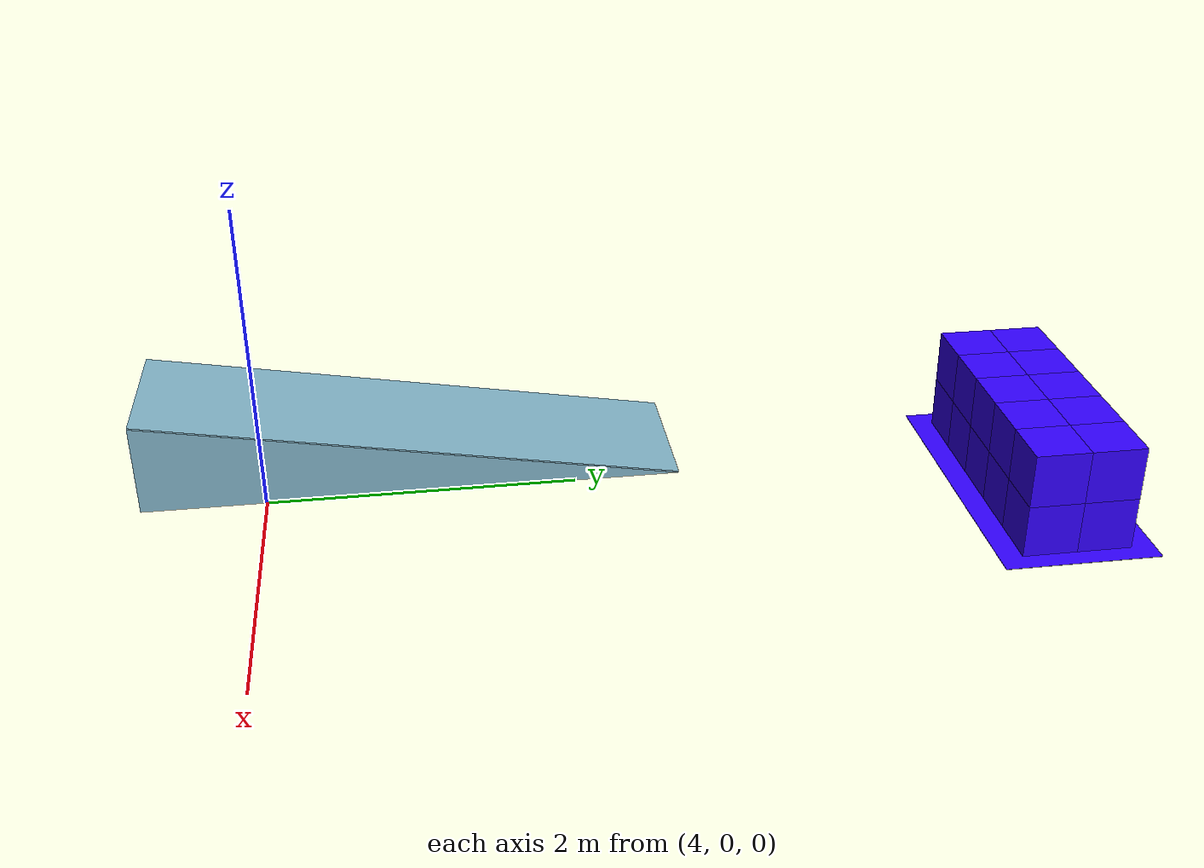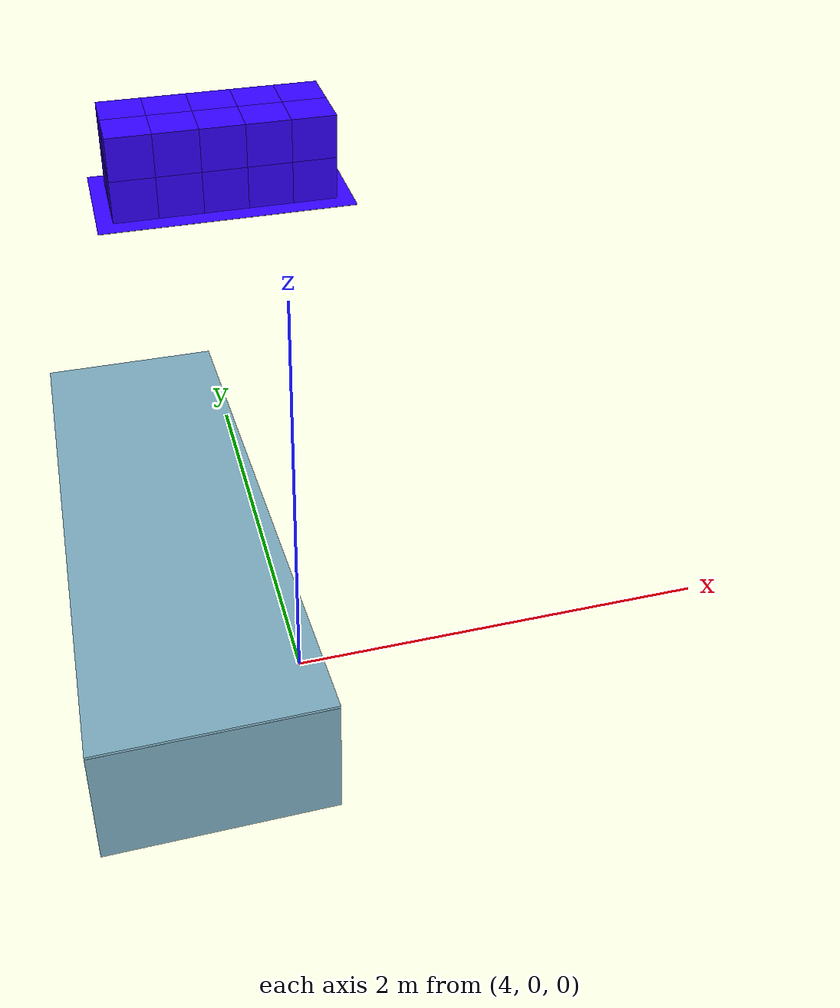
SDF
<sdf version="1.9">
 <world name="robocon_2027">
  <model name="robocon_2027_field">
   <static>true</static>
   <link name="storage_blue">
    <pose>4.450000 4.950000 0.003000 0.000000 0.000000 0.000000</pose>
    <visual name="visual">
     <geometry><box><size>2.000000 1.000000 0.002000</size></box></geometry>
     <cast_shadows>false</cast_shadows>
     <material>
      <ambient>0.196078 0.000000 1.000000 1</ambient>
      <diffuse>0.196078 0.000000 1.000000 1</diffuse>
      <specular>0.08 0.08 0.08 1</specular>
      <double_sided>true</double_sided>
     </material>
    </visual>
   </link>
   <link name="ramp_blue">
    <pose>3.500000 0.950000 0.000000 0.000000 0.000000 0.000000</pose>
    <visual name="visual">
     <geometry><mesh><uri>model://ares_2027sim/meshes/ramp_wedge.obj</uri></mesh></geometry>
     <material>
      <ambient>0.509804 0.705882 0.784314 1</ambient>
      <diffuse>0.509804 0.705882 0.784314 1</diffuse>
      <specular>0.08 0.08 0.08 1</specular>
      <double_sided>true</double_sided>
     </material>
    </visual>
    <collision name="slope_collision">
     <pose>0.000000 0.000000 0.300000 -0.169778 0.000000 0.000000</pose>
     <geometry><box><size>1.000000 3.551056 0.020000</size></box></geometry>
    </collision>
    <visual name="slope_surface_visual">
     <pose>0.000000 0.001000 0.305000 -0.169778 0.000000 0.000000</pose>
     <geometry><box><size>1.000000 3.551056 0.010000</size></box></geometry>
     <material>
      <ambient>0.509804 0.705882 0.784314 1</ambient>
      <diffuse>0.509804 0.705882 0.784314 1</diffuse>
      <specular>0.08 0.08 0.08 1</specular>
      <double_sided>true</double_sided>
     </material>
    </visual>
    <collision name="fill_collision_00">
     <pose>0.000000 -1.700000 0.291429 0.000000 0.000000 0.000000</pose>
     <geometry><box><size>1.000000 0.100000 0.582857</size></box></geometry>
    </collision>
    <collision name="fill_collision_01">
     <pose>0.000000 -1.600000 0.282857 0.000000 0.000000 0.000000</pose>
     <geometry><box><size>1.000000 0.100000 0.565714</size></box></geometry>
    </collision>
    <collision name="fill_collision_02">
     <pose>0.000000 -1.500000 0.274286 0.000000 0.000000 0.000000</pose>
     <geometry><box><size>1.000000 0.100000 0.548571</size></box></geometry>
    </collision>
    <collision name="fill_collision_03">
     <pose>0.000000 -1.400000 0.265714 0.000000 0.000000 0.000000</pose>
     <geometry><box><size>1.000000 0.100000 0.531429</size></box></geometry>
    </collision>
    <collision name="fill_collision_04">
     <pose>0.000000 -1.300000 0.257143 0.000000 0.000000 0.000000</pose>
     <geometry><box><size>1.000000 0.100000 0.514286</size></box></geometry>
    </collision>
    <collision name="fill_collision_05">
     <pose>0.000000 -1.200000 0.248571 0.000000 0.000000 0.000000</pose>
     <geometry><box><size>1.000000 0.100000 0.497143</size></box></geometry>
    </collision>
    <collision name="fill_collision_06">
     <pose>0.000000 -1.100000 0.240000 0.000000 0.000000 0.000000</pose>
     <geometry><box><size>1.000000 0.100000 0.480000</size></box></geometry>
    </collision>
    <collision name="fill_collision_07">
     <pose>0.000000 -1.000000 0.231429 0.000000 0.000000 0.000000</pose>
     <geometry><box><size>1.000000 0.100000 0.462857</size></box></geometry>
    </collision>
    <collision name="fill_collision_08">
     <pose>0.000000 -0.900000 0.222857 0.000000 0.000000 0.000000</pose>
     <geometry><box><size>1.000000 0.100000 0.445714</size></box></geometry>
    </collision>
    <collision name="fill_collision_09">
     <pose>0.000000 -0.800000 0.214286 0.000000 0.000000 0.000000</pose>
     <geometry><box><size>1.000000 0.100000 0.428571</size></box></geometry>
    </collision>
    <collision name="fill_collision_10">
     <pose>0.000000 -0.700000 0.205714 0.000000 0.000000 0.000000</pose>
     <geometry><box><size>1.000000 0.100000 0.411429</size></box></geometry>
    </collision>
    <collision name="fill_collision_11">
     <pose>0.000000 -0.600000 0.197143 0.000000 0.000000 0.000000</pose>
     <geometry><box><size>1.000000 0.100000 0.394286</size></box></geometry>
    </collision>
    <collision name="fill_collision_12">
     <pose>0.000000 -0.500000 0.188571 0.000000 0.000000 0.000000</pose>
     <geometry><box><size>1.000000 0.100000 0.377143</size></box></geometry>
    </collision>
    <collision name="fill_collision_13">
     <pose>0.000000 -0.400000 0.180000 0.000000 0.000000 0.000000</pose>
     <geometry><box><size>1.000000 0.100000 0.360000</size></box></geometry>
    </collision>
    <collision name="fill_collision_14">
     <pose>0.000000 -0.300000 0.171429 0.000000 0.000000 0.000000</pose>
     <geometry><box><size>1.000000 0.100000 0.342857</size></box></geometry>
    </collision>
    <collision name="fill_collision_15">
     <pose>0.000000 -0.200000 0.162857 0.000000 0.000000 0.000000</pose>
     <geometry><box><size>1.000000 0.100000 0.325714</size></box></geometry>
    </collision>
    <collision name="fill_collision_16">
     <pose>0.000000 -0.100000 0.154286 0.000000 0.000000 0.000000</pose>
     <geometry><box><size>1.000000 0.100000 0.308571</size></box></geometry>
    </collision>
    <collision name="fill_collision_17">
     <pose>0.000000 0.000000 0.145714 0.000000 0.000000 0.000000</pose>
     <geometry><box><size>1.000000 0.100000 0.291429</size></box></geometry>
    </collision>
    <collision name="fill_collision_18">
     <pose>0.000000 0.100000 0.137143 0.000000 0.000000 0.000000</pose>
     <geometry><box><size>1.000000 0.100000 0.274286</size></box></geometry>
    </collision>
    <collision name="fill_collision_19">
     <pose>0.000000 0.200000 0.128571 0.000000 0.000000 0.000000</pose>
     <geometry><box><size>1.000000 0.100000 0.257143</size></box></geometry>
    </collision>
    <collision name="fill_collision_20">
     <pose>0.000000 0.300000 0.120000 0.000000 0.000000 0.000000</pose>
     <geometry><box><size>1.000000 0.100000 0.240000</size></box></geometry>
    </collision>
    <collision name="fill_collision_21">
     <pose>0.000000 0.400000 0.111429 0.000000 0.000000 0.000000</pose>
     <geometry><box><size>1.000000 0.100000 0.222857</size></box></geometry>
    </collision>
    <collision name="fill_collision_22">
     <pose>0.000000 0.500000 0.102857 0.000000 0.000000 0.000000</pose>
     <geometry><box><size>1.000000 0.100000 0.205714</size></box></geometry>
    </collision>
    <collision name="fill_collision_23">
     <pose>0.000000 0.600000 0.094286 0.000000 0.000000 0.000000</pose>
     <geometry><box><size>1.000000 0.100000 0.188571</size></box></geometry>
    </collision>
    <collision name="fill_collision_24">
     <pose>0.000000 0.700000 0.085714 0.000000 0.000000 0.000000</pose>
     <geometry><box><size>1.000000 0.100000 0.171429</size></box></geometry>
    </collision>
    <collision name="fill_collision_25">
     <pose>0.000000 0.800000 0.077143 0.000000 0.000000 0.000000</pose>
     <geometry><box><size>1.000000 0.100000 0.154286</size></box></geometry>
    </collision>
    <collision name="fill_collision_26">
     <pose>0.000000 0.900000 0.068571 0.000000 0.000000 0.000000</pose>
     <geometry><box><size>1.000000 0.100000 0.137143</size></box></geometry>
    </collision>
    <collision name="fill_collision_27">
     <pose>0.000000 1.000000 0.060000 0.000000 0.000000 0.000000</pose>
     <geometry><box><size>1.000000 0.100000 0.120000</size></box></geometry>
    </collision>
    <collision name="fill_collision_28">
     <pose>0.000000 1.100000 0.051429 0.000000 0.000000 0.000000</pose>
     <geometry><box><size>1.000000 0.100000 0.102857</size></box></geometry>
    </collision>
    <collision name="fill_collision_29">
     <pose>0.000000 1.200000 0.042857 0.000000 0.000000 0.000000</pose>
     <geometry><box><size>1.000000 0.100000 0.085714</size></box></geometry>
    </collision>
    <collision name="fill_collision_30">
     <pose>0.000000 1.300000 0.034286 0.000000 0.000000 0.000000</pose>
     <geometry><box><size>1.000000 0.100000 0.068571</size></box></geometry>
    </collision>
    <collision name="fill_collision_31">
     <pose>0.000000 1.400000 0.025714 0.000000 0.000000 0.000000</pose>
     <geometry><box><size>1.000000 0.100000 0.051429</size></box></geometry>
    </collision>
    <collision name="fill_collision_32">
     <pose>0.000000 1.500000 0.017143 0.000000 0.000000 0.000000</pose>
     <geometry><box><size>1.000000 0.100000 0.034286</size></box></geometry>
    </collision>
    <collision name="fill_collision_33">
     <pose>0.000000 1.600000 0.008571 0.000000 0.000000 0.000000</pose>
     <geometry><box><size>1.000000 0.100000 0.017143</size></box></geometry>
    </collision>
    <collision name="high_end_collision">
     <pose>0.000000 -1.745000 0.300000 0.000000 0.000000 0.000000</pose>
     <geometry><box><size>1.000000 0.010000 0.600000</size></box></geometry>
    </collision>
   </link>
  </model>
  <model name="earth_block_blue_01">
   <pose>3.750000 4.775000 0.175000 0.000000 0.000000 0.000000</pose>
   <link name="earth_block_blue_01_link">
    <inertial>
     <mass>0.275000</mass>
     <inertia>
      <ixx>0.00561458</ixx>
      <iyy>0.00561458</iyy>
      <izz>0.00561458</izz>
      <ixy>0.00000000</ixy>
      <ixz>0.00000000</ixz>
      <iyz>0.00000000</iyz>
     </inertia>
    </inertial>
    <collision name="collision">
     <geometry><box><size>0.350000 0.350000 0.350000</size></box></geometry>
     <surface><friction><ode><mu>0.80</mu><mu2>0.80</mu2></ode></friction></surface>
    </collision>
    <visual name="body">
     <geometry><box><size>0.350000 0.350000 0.350000</size></box></geometry>
     <material>
      <ambient>0.196078 0.000000 1.000000 1</ambient>
      <diffuse>0.196078 0.000000 1.000000 1</diffuse>
      <specular>0.08 0.08 0.08 1</specular>
      <double_sided>true</double_sided>
     </material>
    </visual>
   </link>
  </model>
  <model name="earth_block_blue_02">
   <pose>4.100000 4.775000 0.175000 0.000000 0.000000 0.000000</pose>
   <link name="earth_block_blue_02_link">
    <inertial>
     <mass>0.275000</mass>
     <inertia>
      <ixx>0.00561458</ixx>
      <iyy>0.00561458</iyy>
      <izz>0.00561458</izz>
      <ixy>0.00000000</ixy>
      <ixz>0.00000000</ixz>
      <iyz>0.00000000</iyz>
     </inertia>
    </inertial>
    <collision name="collision">
     <geometry><box><size>0.350000 0.350000 0.350000</size></box></geometry>
     <surface><friction><ode><mu>0.80</mu><mu2>0.80</mu2></ode></friction></surface>
    </collision>
    <visual name="body">
     <geometry><box><size>0.350000 0.350000 0.350000</size></box></geometry>
     <material>
      <ambient>0.196078 0.000000 1.000000 1</ambient>
      <diffuse>0.196078 0.000000 1.000000 1</diffuse>
      <specular>0.08 0.08 0.08 1</specular>
      <double_sided>true</double_sided>
     </material>
    </visual>
   </link>
  </model>
  <model name="earth_block_blue_03">
   <pose>4.450000 4.775000 0.175000 0.000000 0.000000 0.000000</pose>
   <link name="earth_block_blue_03_link">
    <inertial>
     <mass>0.275000</mass>
     <inertia>
      <ixx>0.00561458</ixx>
      <iyy>0.00561458</iyy>
      <izz>0.00561458</izz>
      <ixy>0.00000000</ixy>
      <ixz>0.00000000</ixz>
      <iyz>0.00000000</iyz>
     </inertia>
    </inertial>
    <collision name="collision">
     <geometry><box><size>0.350000 0.350000 0.350000</size></box></geometry>
     <surface><friction><ode><mu>0.80</mu><mu2>0.80</mu2></ode></friction></surface>
    </collision>
    <visual name="body">
     <geometry><box><size>0.350000 0.350000 0.350000</size></box></geometry>
     <material>
      <ambient>0.196078 0.000000 1.000000 1</ambient>
      <diffuse>0.196078 0.000000 1.000000 1</diffuse>
      <specular>0.08 0.08 0.08 1</specular>
      <double_sided>true</double_sided>
     </material>
    </visual>
   </link>
  </model>
  <model name="earth_block_blue_04">
   <pose>4.800000 4.775000 0.175000 0.000000 0.000000 0.000000</pose>
   <link name="earth_block_blue_04_link">
    <inertial>
     <mass>0.275000</mass>
     <inertia>
      <ixx>0.00561458</ixx>
      <iyy>0.00561458</iyy>
      <izz>0.00561458</izz>
      <ixy>0.00000000</ixy>
      <ixz>0.00000000</ixz>
      <iyz>0.00000000</iyz>
     </inertia>
    </inertial>
    <collision name="collision">
     <geometry><box><size>0.350000 0.350000 0.350000</size></box></geometry>
     <surface><friction><ode><mu>0.80</mu><mu2>0.80</mu2></ode></friction></surface>
    </collision>
    <visual name="body">
     <geometry><box><size>0.350000 0.350000 0.350000</size></box></geometry>
     <material>
      <ambient>0.196078 0.000000 1.000000 1</ambient>
      <diffuse>0.196078 0.000000 1.000000 1</diffuse>
      <specular>0.08 0.08 0.08 1</specular>
      <double_sided>true</double_sided>
     </material>
    </visual>
   </link>
  </model>
  <model name="earth_block_blue_05">
   <pose>5.150000 4.775000 0.175000 0.000000 0.000000 0.000000</pose>
   <link name="earth_block_blue_05_link">
    <inertial>
     <mass>0.275000</mass>
     <inertia>
      <ixx>0.00561458</ixx>
      <iyy>0.00561458</iyy>
      <izz>0.00561458</izz>
      <ixy>0.00000000</ixy>
      <ixz>0.00000000</ixz>
      <iyz>0.00000000</iyz>
     </inertia>
    </inertial>
    <collision name="collision">
     <geometry><box><size>0.350000 0.350000 0.350000</size></box></geometry>
     <surface><friction><ode><mu>0.80</mu><mu2>0.80</mu2></ode></friction></surface>
    </collision>
    <visual name="body">
     <geometry><box><size>0.350000 0.350000 0.350000</size></box></geometry>
     <material>
      <ambient>0.196078 0.000000 1.000000 1</ambient>
      <diffuse>0.196078 0.000000 1.000000 1</diffuse>
      <specular>0.08 0.08 0.08 1</specular>
      <double_sided>true</double_sided>
     </material>
    </visual>
   </link>
  </model>
  <model name="earth_block_blue_06">
   <pose>3.750000 5.125000 0.175000 0.000000 0.000000 0.000000</pose>
   <link name="earth_block_blue_06_link">
    <inertial>
     <mass>0.275000</mass>
     <inertia>
      <ixx>0.00561458</ixx>
      <iyy>0.00561458</iyy>
      <izz>0.00561458</izz>
      <ixy>0.00000000</ixy>
      <ixz>0.00000000</ixz>
      <iyz>0.00000000</iyz>
     </inertia>
    </inertial>
    <collision name="collision">
     <geometry><box><size>0.350000 0.350000 0.350000</size></box></geometry>
     <surface><friction><ode><mu>0.80</mu><mu2>0.80</mu2></ode></friction></surface>
    </collision>
    <visual name="body">
     <geometry><box><size>0.350000 0.350000 0.350000</size></box></geometry>
     <material>
      <ambient>0.196078 0.000000 1.000000 1</ambient>
      <diffuse>0.196078 0.000000 1.000000 1</diffuse>
      <specular>0.08 0.08 0.08 1</specular>
      <double_sided>true</double_sided>
     </material>
    </visual>
   </link>
  </model>
  <model name="earth_block_blue_07">
   <pose>4.100000 5.125000 0.175000 0.000000 0.000000 0.000000</pose>
   <link name="earth_block_blue_07_link">
    <inertial>
     <mass>0.275000</mass>
     <inertia>
      <ixx>0.00561458</ixx>
      <iyy>0.00561458</iyy>
      <izz>0.00561458</izz>
      <ixy>0.00000000</ixy>
      <ixz>0.00000000</ixz>
      <iyz>0.00000000</iyz>
     </inertia>
    </inertial>
    <collision name="collision">
     <geometry><box><size>0.350000 0.350000 0.350000</size></box></geometry>
     <surface><friction><ode><mu>0.80</mu><mu2>0.80</mu2></ode></friction></surface>
    </collision>
    <visual name="body">
     <geometry><box><size>0.350000 0.350000 0.350000</size></box></geometry>
     <material>
      <ambient>0.196078 0.000000 1.000000 1</ambient>
      <diffuse>0.196078 0.000000 1.000000 1</diffuse>
      <specular>0.08 0.08 0.08 1</specular>
      <double_sided>true</double_sided>
     </material>
    </visual>
   </link>
  </model>
  <model name="earth_block_blue_08">
   <pose>4.450000 5.125000 0.175000 0.000000 0.000000 0.000000</pose>
   <link name="earth_block_blue_08_link">
    <inertial>
     <mass>0.275000</mass>
     <inertia>
      <ixx>0.00561458</ixx>
      <iyy>0.00561458</iyy>
      <izz>0.00561458</izz>
      <ixy>0.00000000</ixy>
      <ixz>0.00000000</ixz>
      <iyz>0.00000000</iyz>
     </inertia>
    </inertial>
    <collision name="collision">
     <geometry><box><size>0.350000 0.350000 0.350000</size></box></geometry>
     <surface><friction><ode><mu>0.80</mu><mu2>0.80</mu2></ode></friction></surface>
    </collision>
    <visual name="body">
     <geometry><box><size>0.350000 0.350000 0.350000</size></box></geometry>
     <material>
      <ambient>0.196078 0.000000 1.000000 1</ambient>
      <diffuse>0.196078 0.000000 1.000000 1</diffuse>
      <specular>0.08 0.08 0.08 1</specular>
      <double_sided>true</double_sided>
     </material>
    </visual>
   </link>
  </model>
  <model name="earth_block_blue_09">
   <pose>4.800000 5.125000 0.175000 0.000000 0.000000 0.000000</pose>
   <link name="earth_block_blue_09_link">
    <inertial>
     <mass>0.275000</mass>
     <inertia>
      <ixx>0.00561458</ixx>
      <iyy>0.00561458</iyy>
      <izz>0.00561458</izz>
      <ixy>0.00000000</ixy>
      <ixz>0.00000000</ixz>
      <iyz>0.00000000</iyz>
     </inertia>
    </inertial>
    <collision name="collision">
     <geometry><box><size>0.350000 0.350000 0.350000</size></box></geometry>
     <surface><friction><ode><mu>0.80</mu><mu2>0.80</mu2></ode></friction></surface>
    </collision>
    <visual name="body">
     <geometry><box><size>0.350000 0.350000 0.350000</size></box></geometry>
     <material>
      <ambient>0.196078 0.000000 1.000000 1</ambient>
      <diffuse>0.196078 0.000000 1.000000 1</diffuse>
      <specular>0.08 0.08 0.08 1</specular>
      <double_sided>true</double_sided>
     </material>
    </visual>
   </link>
  </model>
  <model name="earth_block_blue_10">
   <pose>5.150000 5.125000 0.175000 0.000000 0.000000 0.000000</pose>
   <link name="earth_block_blue_10_link">
    <inertial>
     <mass>0.275000</mass>
     <inertia>
      <ixx>0.00561458</ixx>
      <iyy>0.00561458</iyy>
      <izz>0.00561458</izz>
      <ixy>0.00000000</ixy>
      <ixz>0.00000000</ixz>
      <iyz>0.00000000</iyz>
     </inertia>
    </inertial>
    <collision name="collision">
     <geometry><box><size>0.350000 0.350000 0.350000</size></box></geometry>
     <surface><friction><ode><mu>0.80</mu><mu2>0.80</mu2></ode></friction></surface>
    </collision>
    <visual name="body">
     <geometry><box><size>0.350000 0.350000 0.350000</size></box></geometry>
     <material>
      <ambient>0.196078 0.000000 1.000000 1</ambient>
      <diffuse>0.196078 0.000000 1.000000 1</diffuse>
      <specular>0.08 0.08 0.08 1</specular>
      <double_sided>true</double_sided>
     </material>
    </visual>
   </link>
  </model>
  <model name="earth_block_blue_11">
   <pose>3.750000 4.775000 0.525000 0.000000 0.000000 0.000000</pose>
   <link name="earth_block_blue_11_link">
    <inertial>
     <mass>0.275000</mass>
     <inertia>
      <ixx>0.00561458</ixx>
      <iyy>0.00561458</iyy>
      <izz>0.00561458</izz>
      <ixy>0.00000000</ixy>
      <ixz>0.00000000</ixz>
      <iyz>0.00000000</iyz>
     </inertia>
    </inertial>
    <collision name="collision">
     <geometry><box><size>0.350000 0.350000 0.350000</size></box></geometry>
     <surface><friction><ode><mu>0.80</mu><mu2>0.80</mu2></ode></friction></surface>
    </collision>
    <visual name="body">
     <geometry><box><size>0.350000 0.350000 0.350000</size></box></geometry>
     <material>
      <ambient>0.196078 0.000000 1.000000 1</ambient>
      <diffuse>0.196078 0.000000 1.000000 1</diffuse>
      <specular>0.08 0.08 0.08 1</specular>
      <double_sided>true</double_sided>
     </material>
    </visual>
   </link>
  </model>
  <model name="earth_block_blue_12">
   <pose>4.100000 4.775000 0.525000 0.000000 0.000000 0.000000</pose>
   <link name="earth_block_blue_12_link">
    <inertial>
     <mass>0.275000</mass>
     <inertia>
      <ixx>0.00561458</ixx>
      <iyy>0.00561458</iyy>
      <izz>0.00561458</izz>
      <ixy>0.00000000</ixy>
      <ixz>0.00000000</ixz>
      <iyz>0.00000000</iyz>
     </inertia>
    </inertial>
    <collision name="collision">
     <geometry><box><size>0.350000 0.350000 0.350000</size></box></geometry>
     <surface><friction><ode><mu>0.80</mu><mu2>0.80</mu2></ode></friction></surface>
    </collision>
    <visual name="body">
     <geometry><box><size>0.350000 0.350000 0.350000</size></box></geometry>
     <material>
      <ambient>0.196078 0.000000 1.000000 1</ambient>
      <diffuse>0.196078 0.000000 1.000000 1</diffuse>
      <specular>0.08 0.08 0.08 1</specular>
      <double_sided>true</double_sided>
     </material>
    </visual>
   </link>
  </model>
  <model name="earth_block_blue_13">
   <pose>4.450000 4.775000 0.525000 0.000000 0.000000 0.000000</pose>
   <link name="earth_block_blue_13_link">
    <inertial>
     <mass>0.275000</mass>
     <inertia>
      <ixx>0.00561458</ixx>
      <iyy>0.00561458</iyy>
      <izz>0.00561458</izz>
      <ixy>0.00000000</ixy>
      <ixz>0.00000000</ixz>
      <iyz>0.00000000</iyz>
     </inertia>
    </inertial>
    <collision name="collision">
     <geometry><box><size>0.350000 0.350000 0.350000</size></box></geometry>
     <surface><friction><ode><mu>0.80</mu><mu2>0.80</mu2></ode></friction></surface>
    </collision>
    <visual name="body">
     <geometry><box><size>0.350000 0.350000 0.350000</size></box></geometry>
     <material>
      <ambient>0.196078 0.000000 1.000000 1</ambient>
      <diffuse>0.196078 0.000000 1.000000 1</diffuse>
      <specular>0.08 0.08 0.08 1</specular>
      <double_sided>true</double_sided>
     </material>
    </visual>
   </link>
  </model>
  <model name="earth_block_blue_14">
   <pose>4.800000 4.775000 0.525000 0.000000 0.000000 0.000000</pose>
   <link name="earth_block_blue_14_link">
    <inertial>
     <mass>0.275000</mass>
     <inertia>
      <ixx>0.00561458</ixx>
      <iyy>0.00561458</iyy>
      <izz>0.00561458</izz>
      <ixy>0.00000000</ixy>
      <ixz>0.00000000</ixz>
      <iyz>0.00000000</iyz>
     </inertia>
    </inertial>
    <collision name="collision">
     <geometry><box><size>0.350000 0.350000 0.350000</size></box></geometry>
     <surface><friction><ode><mu>0.80</mu><mu2>0.80</mu2></ode></friction></surface>
    </collision>
    <visual name="body">
     <geometry><box><size>0.350000 0.350000 0.350000</size></box></geometry>
     <material>
      <ambient>0.196078 0.000000 1.000000 1</ambient>
      <diffuse>0.196078 0.000000 1.000000 1</diffuse>
      <specular>0.08 0.08 0.08 1</specular>
      <double_sided>true</double_sided>
     </material>
    </visual>
   </link>
  </model>
  <model name="earth_block_blue_15">
   <pose>5.150000 4.775000 0.525000 0.000000 0.000000 0.000000</pose>
   <link name="earth_block_blue_15_link">
    <inertial>
     <mass>0.275000</mass>
     <inertia>
      <ixx>0.00561458</ixx>
      <iyy>0.00561458</iyy>
      <izz>0.00561458</izz>
      <ixy>0.00000000</ixy>
      <ixz>0.00000000</ixz>
      <iyz>0.00000000</iyz>
     </inertia>
    </inertial>
    <collision name="collision">
     <geometry><box><size>0.350000 0.350000 0.350000</size></box></geometry>
     <surface><friction><ode><mu>0.80</mu><mu2>0.80</mu2></ode></friction></surface>
    </collision>
    <visual name="body">
     <geometry><box><size>0.350000 0.350000 0.350000</size></box></geometry>
     <material>
      <ambient>0.196078 0.000000 1.000000 1</ambient>
      <diffuse>0.196078 0.000000 1.000000 1</diffuse>
      <specular>0.08 0.08 0.08 1</specular>
      <double_sided>true</double_sided>
     </material>
    </visual>
   </link>
  </model>
  <model name="earth_block_blue_16">
   <pose>3.750000 5.125000 0.525000 0.000000 0.000000 0.000000</pose>
   <link name="earth_block_blue_16_link">
    <inertial>
     <mass>0.275000</mass>
     <inertia>
      <ixx>0.00561458</ixx>
      <iyy>0.00561458</iyy>
      <izz>0.00561458</izz>
      <ixy>0.00000000</ixy>
      <ixz>0.00000000</ixz>
      <iyz>0.00000000</iyz>
     </inertia>
    </inertial>
    <collision name="collision">
     <geometry><box><size>0.350000 0.350000 0.350000</size></box></geometry>
     <surface><friction><ode><mu>0.80</mu><mu2>0.80</mu2></ode></friction></surface>
    </collision>
    <visual name="body">
     <geometry><box><size>0.350000 0.350000 0.350000</size></box></geometry>
     <material>
      <ambient>0.196078 0.000000 1.000000 1</ambient>
      <diffuse>0.196078 0.000000 1.000000 1</diffuse>
      <specular>0.08 0.08 0.08 1</specular>
      <double_sided>true</double_sided>
     </material>
    </visual>
   </link>
  </model>
  <model name="earth_block_blue_17">
   <pose>4.100000 5.125000 0.525000 0.000000 0.000000 0.000000</pose>
   <link name="earth_block_blue_17_link">
    <inertial>
     <mass>0.275000</mass>
     <inertia>
      <ixx>0.00561458</ixx>
      <iyy>0.00561458</iyy>
      <izz>0.00561458</izz>
      <ixy>0.00000000</ixy>
      <ixz>0.00000000</ixz>
      <iyz>0.00000000</iyz>
     </inertia>
    </inertial>
    <collision name="collision">
     <geometry><box><size>0.350000 0.350000 0.350000</size></box></geometry>
     <surface><friction><ode><mu>0.80</mu><mu2>0.80</mu2></ode></friction></surface>
    </collision>
    <visual name="body">
     <geometry><box><size>0.350000 0.350000 0.350000</size></box></geometry>
     <material>
      <ambient>0.196078 0.000000 1.000000 1</ambient>
      <diffuse>0.196078 0.000000 1.000000 1</diffuse>
      <specular>0.08 0.08 0.08 1</specular>
      <double_sided>true</double_sided>
     </material>
    </visual>
   </link>
  </model>
  <model name="earth_block_blue_18">
   <pose>4.450000 5.125000 0.525000 0.000000 0.000000 0.000000</pose>
   <link name="earth_block_blue_18_link">
    <inertial>
     <mass>0.275000</mass>
     <inertia>
      <ixx>0.00561458</ixx>
      <iyy>0.00561458</iyy>
      <izz>0.00561458</izz>
      <ixy>0.00000000</ixy>
      <ixz>0.00000000</ixz>
      <iyz>0.00000000</iyz>
     </inertia>
    </inertial>
    <collision name="collision">
     <geometry><box><size>0.350000 0.350000 0.350000</size></box></geometry>
     <surface><friction><ode><mu>0.80</mu><mu2>0.80</mu2></ode></friction></surface>
    </collision>
    <visual name="body">
     <geometry><box><size>0.350000 0.350000 0.350000</size></box></geometry>
     <material>
      <ambient>0.196078 0.000000 1.000000 1</ambient>
      <diffuse>0.196078 0.000000 1.000000 1</diffuse>
      <specular>0.08 0.08 0.08 1</specular>
      <double_sided>true</double_sided>
     </material>
    </visual>
   </link>
  </model>
  <model name="earth_block_blue_19">
   <pose>4.800000 5.125000 0.525000 0.000000 0.000000 0.000000</pose>
   <link name="earth_block_blue_19_link">
    <inertial>
     <mass>0.275000</mass>
     <inertia>
      <ixx>0.00561458</ixx>
      <iyy>0.00561458</iyy>
      <izz>0.00561458</izz>
      <ixy>0.00000000</ixy>
      <ixz>0.00000000</ixz>
      <iyz>0.00000000</iyz>
     </inertia>
    </inertial>
    <collision name="collision">
     <geometry><box><size>0.350000 0.350000 0.350000</size></box></geometry>
     <surface><friction><ode><mu>0.80</mu><mu2>0.80</mu2></ode></friction></surface>
    </collision>
    <visual name="body">
     <geometry><box><size>0.350000 0.350000 0.350000</size></box></geometry>
     <material>
      <ambient>0.196078 0.000000 1.000000 1</ambient>
      <diffuse>0.196078 0.000000 1.000000 1</diffuse>
      <specular>0.08 0.08 0.08 1</specular>
      <double_sided>true</double_sided>
     </material>
    </visual>
   </link>
  </model>
  <model name="earth_block_blue_20">
   <pose>5.150000 5.125000 0.525000 0.000000 0.000000 0.000000</pose>
   <link name="earth_block_blue_20_link">
    <inertial>
     <mass>0.275000</mass>
     <inertia>
      <ixx>0.00561458</ixx>
      <iyy>0.00561458</iyy>
      <izz>0.00561458</izz>
      <ixy>0.00000000</ixy>
      <ixz>0.00000000</ixz>
      <iyz>0.00000000</iyz>
     </inertia>
    </inertial>
    <collision name="collision">
     <geometry><box><size>0.350000 0.350000 0.350000</size></box></geometry>
     <surface><friction><ode><mu>0.80</mu><mu2>0.80</mu2></ode></friction></surface>
    </collision>
    <visual name="body">
     <geometry><box><size>0.350000 0.350000 0.350000</size></box></geometry>
     <material>
      <ambient>0.196078 0.000000 1.000000 1</ambient>
      <diffuse>0.196078 0.000000 1.000000 1</diffuse>
      <specular>0.08 0.08 0.08 1</specular>
      <double_sided>true</double_sided>
     </material>
    </visual>
   </link>
  </model>
 </world>
</sdf>
